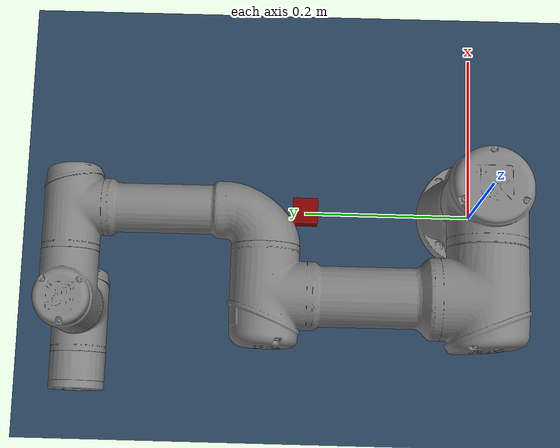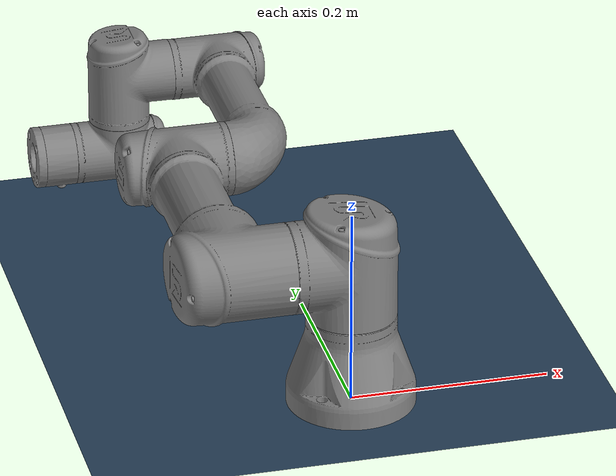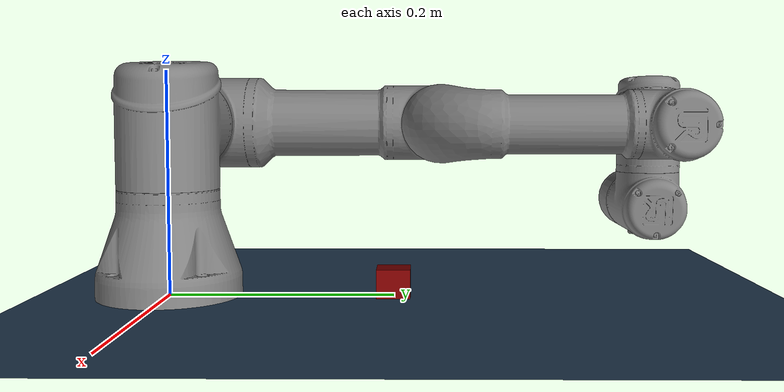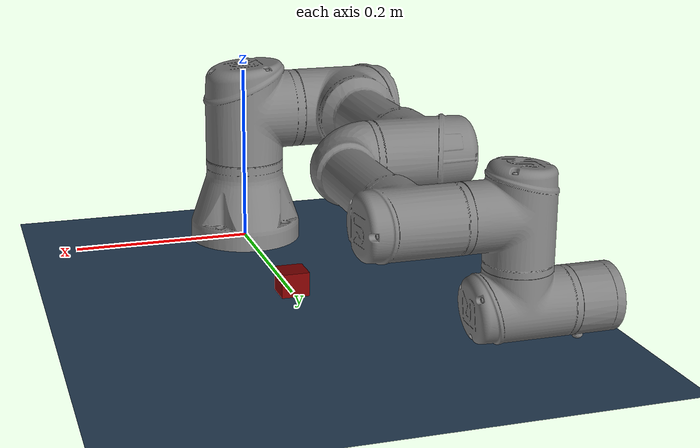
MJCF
<mujoco model="ur5e scene">
  <include file="ur3e_hande.xml"/>
  <statistic center="0.3 0 0.4" extent="0.8"/>

  <visual>
    <headlight diffuse="0.6 0.6 0.6" ambient="0.1 0.1 0.1" specular="0 0 0"/>
    <rgba haze="0.15 0.25 0.35 1"/>
    <global azimuth="120" elevation="-20"/>
  </visual>

  <asset>
    <texture type="skybox" builtin="gradient" rgb1="0.3 0.5 0.7" rgb2="0 0 0" width="512" height="3072"/>
    <texture type="2d" name="groundplane" builtin="checker" mark="edge" rgb1="0.2 0.3 0.4" rgb2="0.1 0.2 0.3"
      markrgb="0.8 0.8 0.8" width="300" height="300"/>
    <material name="groundplane" texture="groundplane" texuniform="true" texrepeat="5 5" reflectance="0.2"/>

  </asset>

  <worldbody>
    <light pos="0 0 1.5" dir="0 0 -1" directional="true"/>
    <geom name="floor" size="0 0 0.05" type="plane" material="groundplane"/>

        <!-- Define the box -->
    <body name="box" pos="0.0 0.2 0.01">
        <freejoint name="red_box_joint"/>
        <inertial pos="0 0 0" mass="0.1" diaginertia="0.00016667 0.00016667 0.00016667"/>
        <geom friction="0.5" condim="3" pos="0 0 0" size="0.015 0.015 0.015" type="box" name="red_box" rgba="0.5 0 0 1" priority="1"/>
    </body>

    </worldbody>

</mujoco>

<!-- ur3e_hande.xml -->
<mujoco model="ur3e">
    <compiler angle="radian" meshdir="assets/ur_3e_visual/" texturedir="assets/ur_3e_visual/" />
    <option integrator="implicitfast"/>

    <default>
        <default class="ur3e">
        <material specular="0.5" shininess="0.25"/>
        <joint axis="0 1 0" range="-6.28319 6.28319" armature="0.1"/>
        <general gaintype="fixed" biastype="affine" ctrlrange="-6.2831 6.2831" gainprm="2000" biasprm="0 -2000 -400"
            forcerange="-150 150"/>
        <default class="size3">
            <default class="size3_limited">
            <joint range="-3.1415 3.1415"/>
            <general ctrlrange="-3.1415 3.1415"/>
            </default>
        </default>
        <default class="size1">
            <general gainprm="500" biasprm="0 -500 -100" forcerange="-28 28"/>
        </default>
        <default class="visual">
            <geom type="mesh" contype="0" conaffinity="0" group="2"/>
        </default>
        <default class="collision">
            <geom type="capsule" group="3"/>
            <default class="eef_collision">
            <geom type="cylinder"/>
            </default>
        </default>
        <site size="0.001" rgba="0.5 0.5 0.5 0.3" group="4"/>
        </default>
    </default>

    <asset>
        <material class="ur3e" name="black" rgba="0.033 0.033 0.033 1"/>
        <material class="ur3e" name="jointgray" rgba="0.278 0.278 0.278 1"/>
        <material class="ur3e" name="linkgray" rgba="0.82 0.82 0.82 1"/>
        <material class="ur3e" name="urblue" rgba="0.49 0.678 0.9 0.3"/>

        <mesh name="base"     file="base.stl" />
        <mesh name="shoulder" file="shoulder.stl" />
        <mesh name="upperarm" file="upperarm.stl" />
        <mesh name="forearm"  file="forearm.stl" />
        <mesh name="wrist1"   file="wrist1.stl" />
        <mesh name="wrist2"   file="wrist2.stl" />
        <mesh name="wrist3"   file="wrist3.stl" />

        <mesh file="../cameraholder.stl" scale="0.0001 0.0001 0.0001"/>
        <mesh file="../simple_spoon.stl" scale="0.0012 0.0012 0.0012"/>
    </asset>
    <worldbody>
    <light name="spotlight" mode="targetbodycom" target="wrist_2_link" pos="0 -1 2"/>
    <body name="base" pos="0 0 0" quat="1 0 0 1" childclass="ur3e">
        <inertial mass="2.0" pos="0 0 0" diaginertia="0.00443333156 0.00443333156 0.0072"/>
        <geom type="mesh" mesh="base" conaffinity="0" contype="1"  />
        <geom mesh="base" material="urblue" class="visual"/>
        <body name="shoulder_link" pos="0 0 0.152">
            <inertial pos="0 0 0" mass="2" diaginertia="0.00809316 0.00809316 0.005625" />
            <joint name="shoulder_pan_joint" pos="0 0 0" axis="0 0 1" range="-3.14159 3.14159" />
            <geom type="mesh" mesh="shoulder" conaffinity="0" contype="1"  />
            <geom mesh="shoulder" material="urblue" class="visual"/>
            <body name="upper_arm_link" pos="0 0.12 0" quat="0.707107 0 0.707107 0">
                <inertial pos="0 0 0.122" mass="1.71" diaginertia="0.0217771 0.0217771 0.00961875" />
                <joint name="shoulder_lift_joint" pos="0 0 0" axis="0 1 0" limited="true" range="-3.14159 3.14159" />
                <geom type="mesh" mesh="upperarm" conaffinity="0" contype="1"  />
                <geom mesh="upperarm" material="urblue" class="visual"/>
                <body name="forearm_link" pos="0 -0.093 0.244">
                    <inertial pos="0 0 0.1065" mass="0.63" diaginertia="0.00653562 0.00653562 0.00354375" />
                    <joint name="elbow_joint" pos="0 0 0" axis="0 1 0" limited="true" range="-3.14159 3.14159" />
                    <geom type="mesh" mesh="forearm" conaffinity="0" contype="1"  />
                    <geom mesh="forearm" material="urblue" class="visual"/>
                    <body name="wrist_1_link" pos="0 0 0.213" quat="0.707107 0 0.707107 0">
                        <inertial pos="0 0 0" quat="0.5 0.5 -0.5 0.5" mass="0.4" diaginertia="0.00225 0.002085 0.002085" />
                        <joint name="wrist_1_joint" pos="0 0 0" axis="0 1 0" limited="true" range="-3.14159 3.14159" />
                        <geom type="mesh" mesh="wrist1" conaffinity="0" contype="1"  />
                        <geom mesh="wrist1" material="urblue" class="visual"/>
                        <body name="wrist_2_link" pos="0 0.104 0">
                            <inertial pos="0 0 0" quat="0.5 0.5 -0.5 0.5" mass="0.4" diaginertia="0.00225 0.002085 0.002085" />
                            <joint name="wrist_2_joint" pos="0 0 0" axis="0 0 1" limited="true" range="-3.14159 3.14159" />
                            <geom type="mesh" mesh="wrist2" conaffinity="0" contype="1"  />
                            <geom mesh="wrist2" material="urblue" class="visual"/>
                            <body name="wrist_3_link" pos="0 0 0.085">
                                <inertial pos="0 0.000233618 0" quat="0.5 0.5 -0.5 0.5" mass="0.1705" diaginertia="0.000991097 0.000918909 0.000912204" />
                                <joint name="wrist_3_joint" pos="0 0 0" axis="0 1 0" limited="true" range="-3.14159 3.14159" />
                                <geom type="mesh" mesh="wrist3" conaffinity="0" contype="1"  />
                                <geom mesh="wrist3" material="urblue" class="visual"/>
                                <site name="attachment_site" pos="0 0.1 0" quat="-1 1 0 0"/>

                            </body>
                        </body>
                    </body>
                </body>
            </body>
        </body>
      </body>
    </worldbody>
    <!-- Actuators -->
    <actuator>
        <general class="size3" name="shoulder_pan" joint="shoulder_pan_joint"/>
        <general class="size3" name="shoulder_lift" joint="shoulder_lift_joint"/>
        <general class="size3_limited" name="elbow" joint="elbow_joint"/>
        <general class="size1" name="wrist_1" joint="wrist_1_joint"/>
        <general class="size1" name="wrist_2" joint="wrist_2_joint"/>
        <general class="size1" name="wrist_3" joint="wrist_3_joint"/>
    </actuator>

</mujoco>
